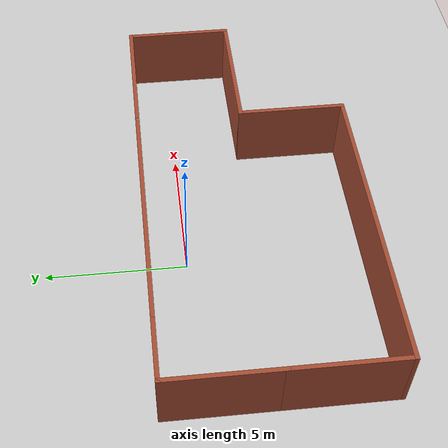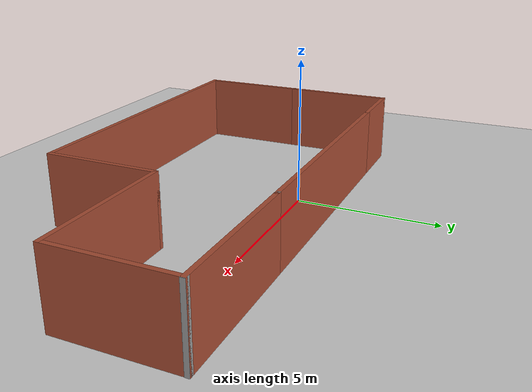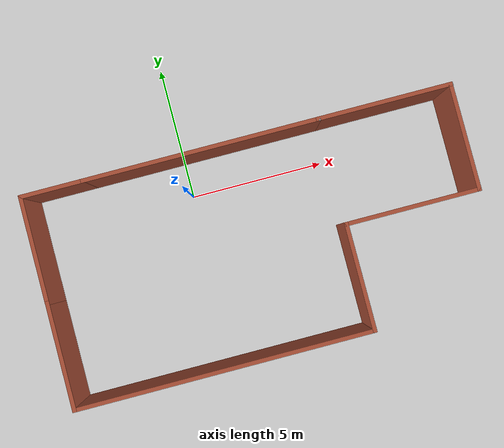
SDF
<sdf version="1.4">
 <world name="default">
  <include><uri>model://sun</uri></include>
  <include><uri>model://ground_plane</uri></include>
  <physics type="ode">
   <real_time_update_rate>1000.0</real_time_update_rate>
   <max_step_size>0.001</max_step_size>
   <real_time_factor>1</real_time_factor>
   <ode>
    <solver>
     <type>quick</type>
     <iters>150</iters>
     <precon_iters>0</precon_iters>
     <sor>1.400000</sor>
     <use_dynamic_moi_rescaling>1</use_dynamic_moi_rescaling>
    </solver>
    <constraints>
     <cfm>0.00001</cfm>
     <erp>0.2</erp>
     <contact_max_correcting_vel>2000.000000</contact_max_correcting_vel>
     <contact_surface_layer>0.01000</contact_surface_layer>
    </constraints>
   </ode>
  </physics>
  <include><uri>model://custom_house2</uri></include>
  <scene><ambient>0.4 0.4 0.4 1</ambient><background>0.7 0.7 0.7 1</background><shadows>true</shadows></scene>
 </world>
</sdf>

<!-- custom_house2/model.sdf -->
<sdf version='1.7'>
  <model name='custom_house2'>
    <pose>2.085 -2.5 0 0 -0 0</pose>
    <link name='Wall_11'>
      <collision name='Wall_11_Collision'>
        <geometry>
          <box>
            <size>4 0.15 2.5</size>
          </box>
        </geometry>
        <pose>0 0 1.25 0 -0 0</pose>
      </collision>
      <visual name='Wall_11_Visual'>
        <pose>0 0 1.25 0 -0 0</pose>
        <geometry>
          <box>
            <size>4 0.15 2.5</size>
          </box>
        </geometry>
        <material>
          <script>
            <uri>file://media/materials/scripts/gazebo.material</uri>
            <name>Gazebo/Bricks</name>
          </script>
          <ambient>1 1 1 1</ambient>
        </material>
        <meta>
          <layer>0</layer>
        </meta>
      </visual>
      <pose>7.845 1.925 0 0 -0 1.5708</pose>
    </link>
    <link name='Wall_12'>
      <collision name='Wall_12_Collision'>
        <geometry>
          <box>
            <size>0.16 0.15 2.5</size>
          </box>
        </geometry>
        <pose>0 0 1.25 0 -0 0</pose>
      </collision>
      <visual name='Wall_12_Visual'>
        <pose>0 0 1.25 0 -0 0</pose>
        <geometry>
          <box>
            <size>0.16 0.15 2.5</size>
          </box>
        </geometry>
        <material>
          <script>
            <uri>file://media/materials/scripts/gazebo.material</uri>
            <name>Gazebo/Grey</name>
          </script>
          <ambient>1 1 1 1</ambient>
        </material>
        <meta>
          <layer>0</layer>
        </meta>
      </visual>
      <pose>7.85 3.85 0 0 -0 0</pose>
    </link>
    <link name='Wall_14'>
      <collision name='Wall_14_Collision'>
        <geometry>
          <box>
            <size>5 0.15 2.5</size>
          </box>
        </geometry>
        <pose>0 0 1.25 0 -0 0</pose>
      </collision>
      <visual name='Wall_14_Visual'>
        <pose>0 0 1.25 0 -0 0</pose>
        <geometry>
          <box>
            <size>5 0.15 2.5</size>
          </box>
        </geometry>
        <material>
          <script>
            <uri>file://media/materials/scripts/gazebo.material</uri>
            <name>Gazebo/Bricks</name>
          </script>
          <ambient>1 1 1 1</ambient>
        </material>
        <meta>
          <layer>0</layer>
        </meta>
      </visual>
      <pose>5.42 3.85 0 0 -0 3.14159</pose>
    </link>
    <link name='Wall_15'>
      <collision name='Wall_15_Collision'>
        <geometry>
          <box>
            <size>0.16 0.15 2.5</size>
          </box>
        </geometry>
        <pose>0 0 1.25 0 -0 0</pose>
      </collision>
      <visual name='Wall_15_Visual'>
        <pose>0 0 1.25 0 -0 0</pose>
        <geometry>
          <box>
            <size>0.16 0.15 2.5</size>
          </box>
        </geometry>
        <material>
          <script>
            <uri>file://media/materials/scripts/gazebo.material</uri>
            <name>Gazebo/Grey</name>
          </script>
          <ambient>1 1 1 1</ambient>
        </material>
        <meta>
          <layer>0</layer>
        </meta>
      </visual>
      <pose>3 3.85 0 0 -0 0</pose>
    </link>
    <link name='Wall_16'>
      <collision name='Wall_16_Collision'>
        <geometry>
          <box>
            <size>8.75 0.15 2.5</size>
          </box>
        </geometry>
        <pose>0 0 1.25 0 -0 0</pose>
      </collision>
      <visual name='Wall_16_Visual'>
        <pose>0 0 1.25 0 -0 0</pose>
        <geometry>
          <box>
            <size>8.75 0.15 2.5</size>
          </box>
        </geometry>
        <material>
          <script>
            <uri>file://media/materials/scripts/gazebo.material</uri>
            <name>Gazebo/Bricks</name>
          </script>
          <ambient>1 1 1 1</ambient>
        </material>
        <meta>
          <layer>0</layer>
        </meta>
      </visual>
      <pose>-1.295 3.85 0 0 -0 3.14159</pose>
    </link>
    <link name='Wall_18'>
      <collision name='Wall_18_Collision'>
        <geometry>
          <box>
            <size>4 0.15 2.5</size>
          </box>
        </geometry>
        <pose>0 0 1.25 0 -0 0</pose>
      </collision>
      <visual name='Wall_18_Visual'>
        <pose>0 0 1.25 0 -0 0</pose>
        <geometry>
          <box>
            <size>4 0.15 2.5</size>
          </box>
        </geometry>
        <material>
          <script>
            <uri>file://media/materials/scripts/gazebo.material</uri>
            <name>Gazebo/Bricks</name>
          </script>
          <ambient>1 1 1 1</ambient>
        </material>
        <meta>
          <layer>0</layer>
        </meta>
      </visual>
      <pose>-7.855 1.925 0 0 -0 1.5708</pose>
    </link>
    <link name='Wall_19'>
      <collision name='Wall_19_Collision'>
        <geometry>
          <box>
            <size>2.41 0.15 2.5</size>
          </box>
        </geometry>
        <pose>0 0 1.25 0 -0 0</pose>
      </collision>
      <visual name='Wall_19_Visual'>
        <pose>0 0 1.25 0 -0 0</pose>
        <geometry>
          <box>
            <size>2.41 0.15 2.5</size>
          </box>
        </geometry>
        <material>
          <script>
            <uri>file://media/materials/scripts/gazebo.material</uri>
            <name>Gazebo/Bricks</name>
          </script>
          <ambient>1 1 1 1</ambient>
        </material>
        <meta>
          <layer>0</layer>
        </meta>
      </visual>
      <pose>-6.725 3.85 0 0 -0 0</pose>
    </link>
    <link name='Wall_3'>
      <collision name='Wall_3_Collision'>
        <geometry>
          <box>
            <size>11 0.15 2.5</size>
          </box>
        </geometry>
        <pose>0 0 1.25 0 -0 0</pose>
      </collision>
      <visual name='Wall_3_Visual'>
        <pose>0 0 1.25 0 -0 0</pose>
        <geometry>
          <box>
            <size>11 0.15 2.5</size>
          </box>
        </geometry>
        <material>
          <script>
            <uri>file://media/materials/scripts/gazebo.material</uri>
            <name>Gazebo/Bricks</name>
          </script>
          <ambient>1 1 1 1</ambient>
        </material>
        <meta>
          <layer>0</layer>
        </meta>
      </visual>
      <pose>-2.43 -3.85 0 0 -0 0</pose>
    </link>
    <link name='Wall_4'>
      <collision name='Wall_4_Collision'>
        <geometry>
          <box>
            <size>4 0.15 2.5</size>
          </box>
        </geometry>
        <pose>0 0 1.25 0 -0 0</pose>
      </collision>
      <visual name='Wall_4_Visual'>
        <pose>0 0 1.25 0 -0 0</pose>
        <geometry>
          <box>
            <size>4 0.15 2.5</size>
          </box>
        </geometry>
        <material>
          <script>
            <uri>file://media/materials/scripts/gazebo.material</uri>
            <name>Gazebo/Bricks</name>
          </script>
          <ambient>1 1 1 1</ambient>
        </material>
        <meta>
          <layer>0</layer>
        </meta>
      </visual>
      <pose>2.995 -1.925 0 0 -0 1.5708</pose>
    </link>
    <link name='Wall_7'>
      <collision name='Wall_7_Collision'>
        <geometry>
          <box>
            <size>4 0.15 2.5</size>
          </box>
        </geometry>
        <pose>0 0 1.25 0 -0 0</pose>
      </collision>
      <visual name='Wall_7_Visual'>
        <pose>0 0 1.25 0 -0 0</pose>
        <geometry>
          <box>
            <size>4 0.15 2.5</size>
          </box>
        </geometry>
        <material>
          <script>
            <uri>file://media/materials/scripts/gazebo.material</uri>
            <name>Gazebo/Bricks</name>
          </script>
          <ambient>1 1 1 1</ambient>
        </material>
        <meta>
          <layer>0</layer>
        </meta>
      </visual>
      <pose>-7.855 -1.925 0 0 -0 1.5708</pose>
    </link>
    <link name='Wall_9'>
      <collision name='Wall_9_Collision'>
        <geometry>
          <box>
            <size>5 0.15 2.5</size>
          </box>
        </geometry>
        <pose>0 0 1.25 0 -0 0</pose>
      </collision>
      <visual name='Wall_9_Visual'>
        <pose>0 0 1.25 0 -0 0</pose>
        <geometry>
          <box>
            <size>5 0.15 2.5</size>
          </box>
        </geometry>
        <material>
          <script>
            <uri>file://media/materials/scripts/gazebo.material</uri>
            <name>Gazebo/Bricks</name>
          </script>
          <ambient>1 1 1 1</ambient>
        </material>
        <meta>
          <layer>0</layer>
        </meta>
      </visual>
      <pose>5.42 0 0 0 -0 0</pose>
    </link>
    <static>1</static>
  </model>
</sdf>
